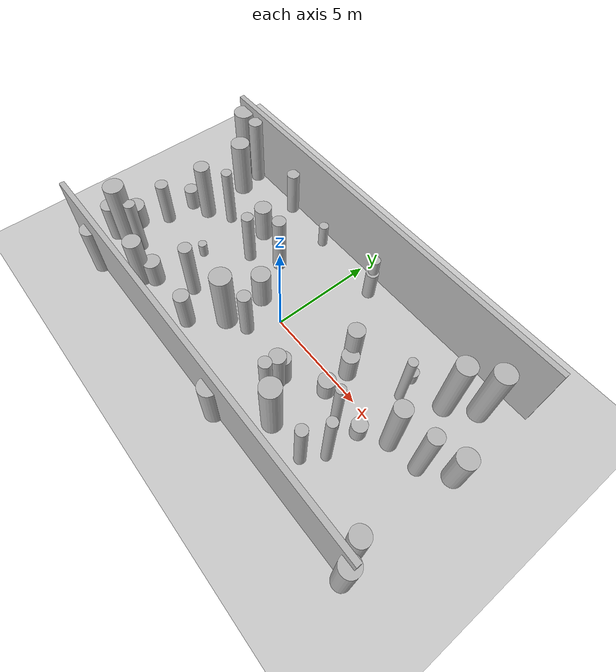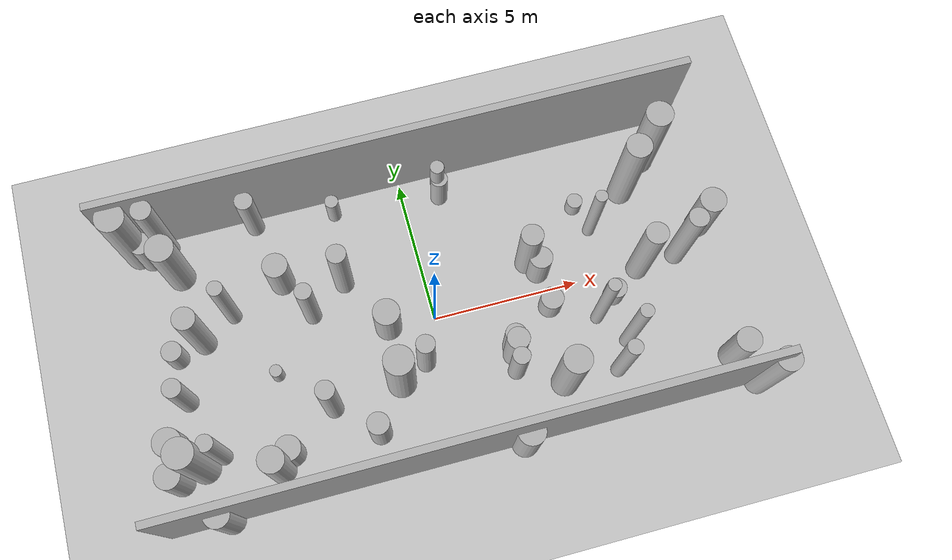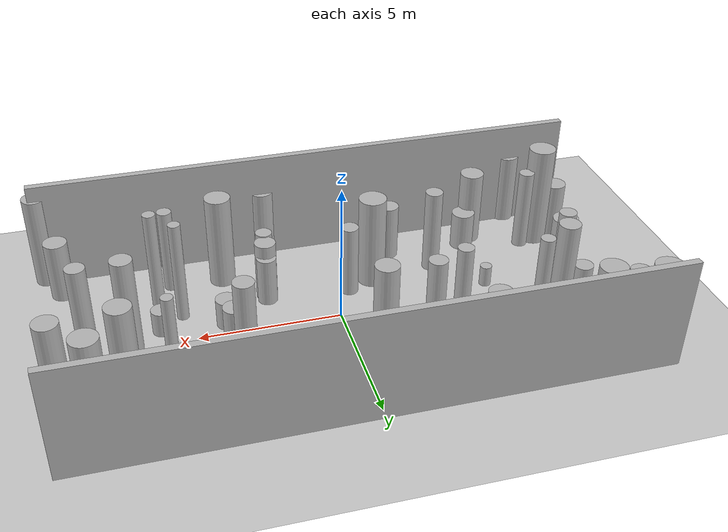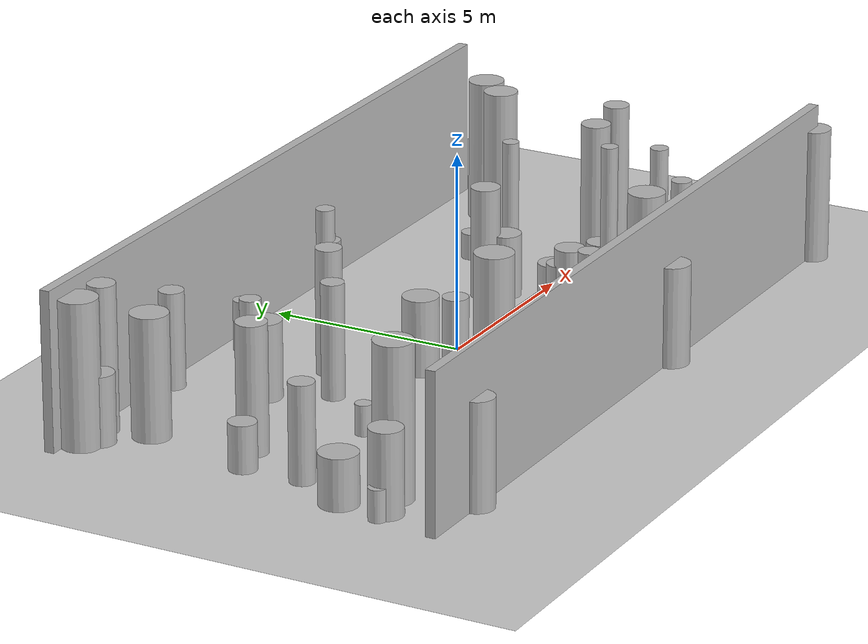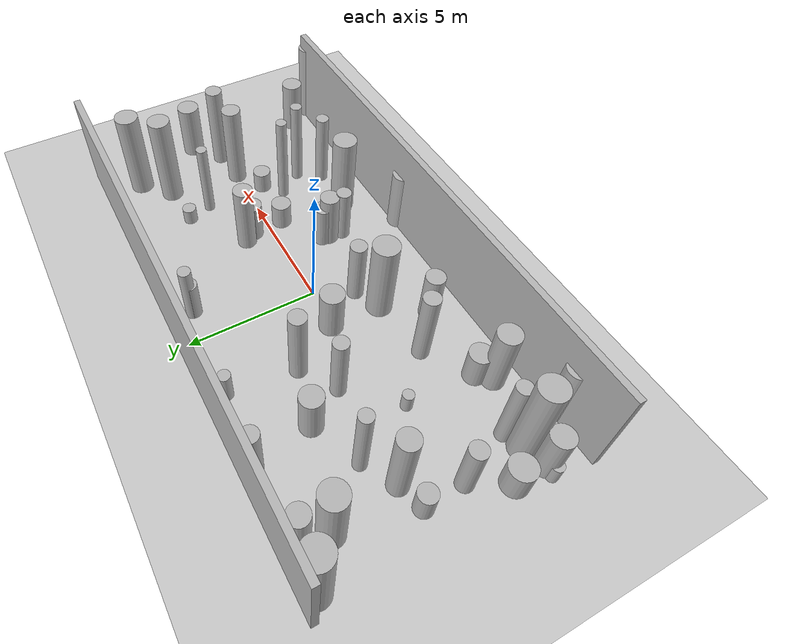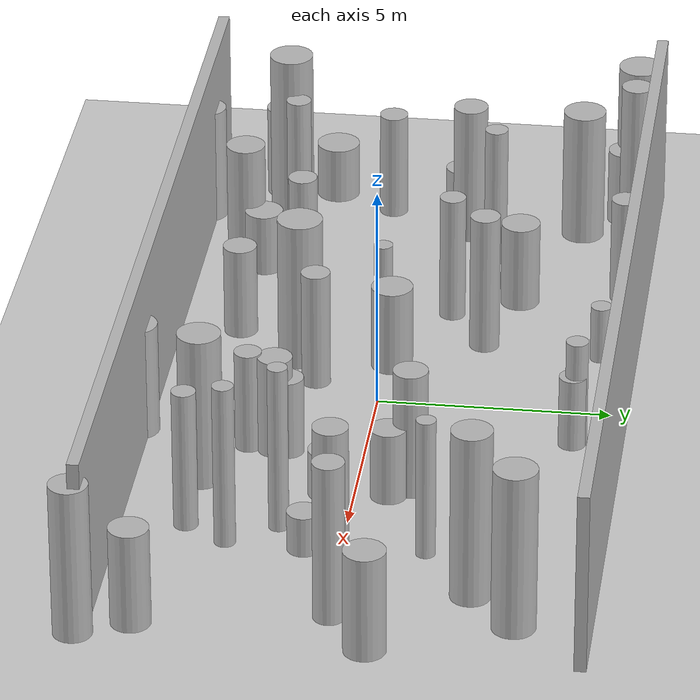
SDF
<?xml version="1.0"?>
<sdf version="1.4">
  <world name="default">
    <gui>
      <camera name="user_camera">
        <pose>-20 -30 40 0 0.66 0.83</pose>
      </camera>
    </gui>
    <include>
      <uri>model://ground_plane</uri>
    </include>
    <include>
      <uri>model://sun</uri>
    </include>
    <scene>
      <shadows>0</shadows>
    </scene>
    <model name="forest">
      <static>true</static>
      <link name="cylinder0">
        <pose>-2.68959795655356 2.0113766975607152 1.5970728615888017 0 0 0 </pose>
        <visual name="visual">
          <geometry>
            <cylinder>
              <radius>0.3268561700407557</radius>
              <length>3.1941457231776034</length>
            </cylinder>
          </geometry>
        </visual>
        <collision name="collision">
          <geometry>
            <cylinder>
              <radius>0.3268561700407557</radius>
              <length>3.1941457231776034</length>
            </cylinder>
          </geometry>
          <max_contacts>0</max_contacts>
        </collision>
      </link>
      <link name="cylinder1">
        <pose>-7.7177040880866326 1.1568127986775778 1.6166086673112208 0 0 0 </pose>
        <visual name="visual">
          <geometry>
            <cylinder>
              <radius>0.38131617678312113</radius>
              <length>3.2332173346224415</length>
            </cylinder>
          </geometry>
        </visual>
        <collision name="collision">
          <geometry>
            <cylinder>
              <radius>0.38131617678312113</radius>
              <length>3.2332173346224415</length>
            </cylinder>
          </geometry>
          <max_contacts>0</max_contacts>
        </collision>
      </link>
      <link name="cylinder2">
        <pose>3.617588601700616 -3.253004639099555 1.736810952850475 0 0 0 </pose>
        <visual name="visual">
          <geometry>
            <cylinder>
              <radius>0.4630361374889053</radius>
              <length>3.47362190570095</length>
            </cylinder>
          </geometry>
        </visual>
        <collision name="collision">
          <geometry>
            <cylinder>
              <radius>0.4630361374889053</radius>
              <length>3.47362190570095</length>
            </cylinder>
          </geometry>
          <max_contacts>0</max_contacts>
        </collision>
      </link>
      <link name="cylinder3">
        <pose>5.718963373977404 2.6825880205367554 0.3367580460458144 0 0 0 </pose>
        <visual name="visual">
          <geometry>
            <cylinder>
              <radius>0.27121167264029034</radius>
              <length>0.6735160920916288</length>
            </cylinder>
          </geometry>
        </visual>
        <collision name="collision">
          <geometry>
            <cylinder>
              <radius>0.27121167264029034</radius>
              <length>0.6735160920916288</length>
            </cylinder>
          </geometry>
          <max_contacts>0</max_contacts>
        </collision>
      </link>
      <link name="cylinder4">
        <pose>9.815624102718761 -4.890035467677819 1.7236457553934157 0 0 0 </pose>
        <visual name="visual">
          <geometry>
            <cylinder>
              <radius>0.4053698532938105</radius>
              <length>3.4472915107868314</length>
            </cylinder>
          </geometry>
        </visual>
        <collision name="collision">
          <geometry>
            <cylinder>
              <radius>0.4053698532938105</radius>
              <length>3.4472915107868314</length>
            </cylinder>
          </geometry>
          <max_contacts>0</max_contacts>
        </collision>
      </link>
      <link name="cylinder5">
        <pose>-7.863865276218684 -2.748146992534486 1.5362536949619663 0 0 0 </pose>
        <visual name="visual">
          <geometry>
            <cylinder>
              <radius>0.2767601987387904</radius>
              <length>3.0725073899239326</length>
            </cylinder>
          </geometry>
        </visual>
        <collision name="collision">
          <geometry>
            <cylinder>
              <radius>0.2767601987387904</radius>
              <length>3.0725073899239326</length>
            </cylinder>
          </geometry>
          <max_contacts>0</max_contacts>
        </collision>
      </link>
      <link name="cylinder6">
        <pose>-5.657075521739494 -3.243355596329568 0.7093183226848625 0 0 0 </pose>
        <visual name="visual">
          <geometry>
            <cylinder>
              <radius>0.42285995792788245</radius>
              <length>1.418636645369725</length>
            </cylinder>
          </geometry>
        </visual>
        <collision name="collision">
          <geometry>
            <cylinder>
              <radius>0.42285995792788245</radius>
              <length>1.418636645369725</length>
            </cylinder>
          </geometry>
          <max_contacts>0</max_contacts>
        </collision>
      </link>
      <link name="cylinder7">
        <pose>-5.21399241738131 4.844750738214236 1.2281490619817281 0 0 0 </pose>
        <visual name="visual">
          <geometry>
            <cylinder>
              <radius>0.3106490543376509</radius>
              <length>2.4562981239634563</length>
            </cylinder>
          </geometry>
        </visual>
        <collision name="collision">
          <geometry>
            <cylinder>
              <radius>0.3106490543376509</radius>
              <length>2.4562981239634563</length>
            </cylinder>
          </geometry>
          <max_contacts>0</max_contacts>
        </collision>
      </link>
      <link name="cylinder8">
        <pose>-8.634050302604987 -0.6883907103051232 1.2284522432205338 0 0 0 </pose>
        <visual name="visual">
          <geometry>
            <cylinder>
              <radius>0.3169625457588813</radius>
              <length>2.4569044864410676</length>
            </cylinder>
          </geometry>
        </visual>
        <collision name="collision">
          <geometry>
            <cylinder>
              <radius>0.3169625457588813</radius>
              <length>2.4569044864410676</length>
            </cylinder>
          </geometry>
          <max_contacts>0</max_contacts>
        </collision>
      </link>
      <link name="cylinder9">
        <pose>1.770332778750305 -4.877572209141105 1.2809551689241236 0 0 0 </pose>
        <visual name="visual">
          <geometry>
            <cylinder>
              <radius>0.45228907555307607</radius>
              <length>2.5619103378482473</length>
            </cylinder>
          </geometry>
        </visual>
        <collision name="collision">
          <geometry>
            <cylinder>
              <radius>0.45228907555307607</radius>
              <length>2.5619103378482473</length>
            </cylinder>
          </geometry>
          <max_contacts>0</max_contacts>
        </collision>
      </link>
      <link name="cylinder10">
        <pose>2.1766987875480392 -2.459263656787355 1.142604255167373 0 0 0 </pose>
        <visual name="visual">
          <geometry>
            <cylinder>
              <radius>0.2919335957878768</radius>
              <length>2.285208510334746</length>
            </cylinder>
          </geometry>
        </visual>
        <collision name="collision">
          <geometry>
            <cylinder>
              <radius>0.2919335957878768</radius>
              <length>2.285208510334746</length>
            </cylinder>
          </geometry>
          <max_contacts>0</max_contacts>
        </collision>
      </link>
      <link name="cylinder11">
        <pose>5.333147638711257 -1.3792701882663048 1.8893428155447134 0 0 0 </pose>
        <visual name="visual">
          <geometry>
            <cylinder>
              <radius>0.21182262101200294</radius>
              <length>3.778685631089427</length>
            </cylinder>
          </geometry>
        </visual>
        <collision name="collision">
          <geometry>
            <cylinder>
              <radius>0.21182262101200294</radius>
              <length>3.778685631089427</length>
            </cylinder>
          </geometry>
          <max_contacts>0</max_contacts>
        </collision>
      </link>
      <link name="cylinder12">
        <pose>6.108728792297001 -0.7563850275244786 0.44871787521917716 0 0 0 </pose>
        <visual name="visual">
          <geometry>
            <cylinder>
              <radius>0.35262468243606215</radius>
              <length>0.8974357504383543</length>
            </cylinder>
          </geometry>
        </visual>
        <collision name="collision">
          <geometry>
            <cylinder>
              <radius>0.35262468243606215</radius>
              <length>0.8974357504383543</length>
            </cylinder>
          </geometry>
          <max_contacts>0</max_contacts>
        </collision>
      </link>
      <link name="cylinder13">
        <pose>7.493072979034487 2.8140006088976506 1.9341376796541248 0 0 0 </pose>
        <visual name="visual">
          <geometry>
            <cylinder>
              <radius>0.43094015236682404</radius>
              <length>3.8682753593082495</length>
            </cylinder>
          </geometry>
        </visual>
        <collision name="collision">
          <geometry>
            <cylinder>
              <radius>0.43094015236682404</radius>
              <length>3.8682753593082495</length>
            </cylinder>
          </geometry>
          <max_contacts>0</max_contacts>
        </collision>
      </link>
      <link name="cylinder14">
        <pose>-2.714406390129909 -3.341061033331769 1.0515054382013362 0 0 0 </pose>
        <visual name="visual">
          <geometry>
            <cylinder>
              <radius>0.3671993688012387</radius>
              <length>2.1030108764026725</length>
            </cylinder>
          </geometry>
        </visual>
        <collision name="collision">
          <geometry>
            <cylinder>
              <radius>0.3671993688012387</radius>
              <length>2.1030108764026725</length>
            </cylinder>
          </geometry>
          <max_contacts>0</max_contacts>
        </collision>
      </link>
      <link name="cylinder15">
        <pose>-3.982893178495493 1.1683861433504914 1.4580378426515856 0 0 0 </pose>
        <visual name="visual">
          <geometry>
            <cylinder>
              <radius>0.28588258986640086</radius>
              <length>2.9160756853031713</length>
            </cylinder>
          </geometry>
        </visual>
        <collision name="collision">
          <geometry>
            <cylinder>
              <radius>0.28588258986640086</radius>
              <length>2.9160756853031713</length>
            </cylinder>
          </geometry>
          <max_contacts>0</max_contacts>
        </collision>
      </link>
      <link name="cylinder16">
        <pose>-9.337235207492933 -3.264105971708614 1.0614563929848035 0 0 0 </pose>
        <visual name="visual">
          <geometry>
            <cylinder>
              <radius>0.41582430287459626</radius>
              <length>2.122912785969607</length>
            </cylinder>
          </geometry>
        </visual>
        <collision name="collision">
          <geometry>
            <cylinder>
              <radius>0.41582430287459626</radius>
              <length>2.122912785969607</length>
            </cylinder>
          </geometry>
          <max_contacts>0</max_contacts>
        </collision>
      </link>
      <link name="cylinder17">
        <pose>-0.6794427139290793 -1.411072954400173 1.3387831289910328 0 0 0 </pose>
        <visual name="visual">
          <geometry>
            <cylinder>
              <radius>0.31414917555333616</radius>
              <length>2.6775662579820656</length>
            </cylinder>
          </geometry>
        </visual>
        <collision name="collision">
          <geometry>
            <cylinder>
              <radius>0.31414917555333616</radius>
              <length>2.6775662579820656</length>
            </cylinder>
          </geometry>
          <max_contacts>0</max_contacts>
        </collision>
      </link>
      <link name="cylinder18">
        <pose>-9.348384287857677 -2.0493049174673783 0.6416988961360066 0 0 0 </pose>
        <visual name="visual">
          <geometry>
            <cylinder>
              <radius>0.48049760477178566</radius>
              <length>1.2833977922720132</length>
            </cylinder>
          </geometry>
        </visual>
        <collision name="collision">
          <geometry>
            <cylinder>
              <radius>0.48049760477178566</radius>
              <length>1.2833977922720132</length>
            </cylinder>
          </geometry>
          <max_contacts>0</max_contacts>
        </collision>
      </link>
      <link name="cylinder19">
        <pose>-1.6387413209665809 -1.8732808482460173 1.7125898501449954 0 0 0 </pose>
        <visual name="visual">
          <geometry>
            <cylinder>
              <radius>0.49225217591459947</radius>
              <length>3.425179700289991</length>
            </cylinder>
          </geometry>
        </visual>
        <collision name="collision">
          <geometry>
            <cylinder>
              <radius>0.49225217591459947</radius>
              <length>3.425179700289991</length>
            </cylinder>
          </geometry>
          <max_contacts>0</max_contacts>
        </collision>
      </link>
      <link name="cylinder20">
        <pose>-8.05474209265747 3.6804097343854387 1.5483206727531764 0 0 0 </pose>
        <visual name="visual">
          <geometry>
            <cylinder>
              <radius>0.47146532775352895</radius>
              <length>3.096641345506353</length>
            </cylinder>
          </geometry>
        </visual>
        <collision name="collision">
          <geometry>
            <cylinder>
              <radius>0.47146532775352895</radius>
              <length>3.096641345506353</length>
            </cylinder>
          </geometry>
          <max_contacts>0</max_contacts>
        </collision>
      </link>
      <link name="cylinder21">
        <pose>1.236548607159909 4.365165548705592 1.2349088145034965 0 0 0 </pose>
        <visual name="visual">
          <geometry>
            <cylinder>
              <radius>0.2376058132506176</radius>
              <length>2.469817629006993</length>
            </cylinder>
          </geometry>
        </visual>
        <collision name="collision">
          <geometry>
            <cylinder>
              <radius>0.2376058132506176</radius>
              <length>2.469817629006993</length>
            </cylinder>
          </geometry>
          <max_contacts>0</max_contacts>
        </collision>
      </link>
      <link name="cylinder22">
        <pose>-8.675407971900192 0.8525052894851974 0.5929914275850551 0 0 0 </pose>
        <visual name="visual">
          <geometry>
            <cylinder>
              <radius>0.3451992468614844</radius>
              <length>1.1859828551701102</length>
            </cylinder>
          </geometry>
        </visual>
        <collision name="collision">
          <geometry>
            <cylinder>
              <radius>0.3451992468614844</radius>
              <length>1.1859828551701102</length>
            </cylinder>
          </geometry>
          <max_contacts>0</max_contacts>
        </collision>
      </link>
      <link name="cylinder23">
        <pose>9.744270062508782 0.9513689943691404 1.1643301933715384 0 0 0 </pose>
        <visual name="visual">
          <geometry>
            <cylinder>
              <radius>0.4406735939137904</radius>
              <length>2.328660386743077</length>
            </cylinder>
          </geometry>
        </visual>
        <collision name="collision">
          <geometry>
            <cylinder>
              <radius>0.4406735939137904</radius>
              <length>2.328660386743077</length>
            </cylinder>
          </geometry>
          <max_contacts>0</max_contacts>
        </collision>
      </link>
      <link name="cylinder24">
        <pose>7.195961371137415 -0.05435962709384157 1.784563654053069 0 0 0 </pose>
        <visual name="visual">
          <geometry>
            <cylinder>
              <radius>0.37300627731212255</radius>
              <length>3.569127308106138</length>
            </cylinder>
          </geometry>
        </visual>
        <collision name="collision">
          <geometry>
            <cylinder>
              <radius>0.37300627731212255</radius>
              <length>3.569127308106138</length>
            </cylinder>
          </geometry>
          <max_contacts>0</max_contacts>
        </collision>
      </link>
      <link name="cylinder25">
        <pose>8.5480253991668 3.7909175891656446 1.840653032762964 0 0 0 </pose>
        <visual name="visual">
          <geometry>
            <cylinder>
              <radius>0.4583118275450914</radius>
              <length>3.681306065525928</length>
            </cylinder>
          </geometry>
        </visual>
        <collision name="collision">
          <geometry>
            <cylinder>
              <radius>0.4583118275450914</radius>
              <length>3.681306065525928</length>
            </cylinder>
          </geometry>
          <max_contacts>0</max_contacts>
        </collision>
      </link>
      <link name="cylinder26">
        <pose>-9.685968386708952 -3.236931767495955 0.3982048849070302 0 0 0 </pose>
        <visual name="visual">
          <geometry>
            <cylinder>
              <radius>0.22439878837134608</radius>
              <length>0.7964097698140604</length>
            </cylinder>
          </geometry>
        </visual>
        <collision name="collision">
          <geometry>
            <cylinder>
              <radius>0.22439878837134608</radius>
              <length>0.7964097698140604</length>
            </cylinder>
          </geometry>
          <max_contacts>0</max_contacts>
        </collision>
      </link>
      <link name="cylinder27">
        <pose>-8.51267211693862 -2.9975007735478796 1.9337483163687614 0 0 0 </pose>
        <visual name="visual">
          <geometry>
            <cylinder>
              <radius>0.4849308671304101</radius>
              <length>3.867496632737523</length>
            </cylinder>
          </geometry>
        </visual>
        <collision name="collision">
          <geometry>
            <cylinder>
              <radius>0.4849308671304101</radius>
              <length>3.867496632737523</length>
            </cylinder>
          </geometry>
          <max_contacts>0</max_contacts>
        </collision>
      </link>
      <link name="cylinder28">
        <pose>-4.016344247105044 -2.1326747080786976 1.5880352848033894 0 0 0 </pose>
        <visual name="visual">
          <geometry>
            <cylinder>
              <radius>0.314570543026229</radius>
              <length>3.176070569606779</length>
            </cylinder>
          </geometry>
        </visual>
        <collision name="collision">
          <geometry>
            <cylinder>
              <radius>0.314570543026229</radius>
              <length>3.176070569606779</length>
            </cylinder>
          </geometry>
          <max_contacts>0</max_contacts>
        </collision>
      </link>
      <link name="cylinder29">
        <pose>-4.7331712065798754 2.586684120364052 0.9825400851100223 0 0 0 </pose>
        <visual name="visual">
          <geometry>
            <cylinder>
              <radius>0.42646125197178575</radius>
              <length>1.9650801702200447</length>
            </cylinder>
          </geometry>
        </visual>
        <collision name="collision">
          <geometry>
            <cylinder>
              <radius>0.42646125197178575</radius>
              <length>1.9650801702200447</length>
            </cylinder>
          </geometry>
          <max_contacts>0</max_contacts>
        </collision>
      </link>
      <link name="cylinder30">
        <pose>1.2783770420289535 4.290467469790258 0.8226698024979953 0 0 0 </pose>
        <visual name="visual">
          <geometry>
            <cylinder>
              <radius>0.2947414273921268</radius>
              <length>1.6453396049959905</length>
            </cylinder>
          </geometry>
        </visual>
        <collision name="collision">
          <geometry>
            <cylinder>
              <radius>0.2947414273921268</radius>
              <length>1.6453396049959905</length>
            </cylinder>
          </geometry>
          <max_contacts>0</max_contacts>
        </collision>
      </link>
      <link name="cylinder31">
        <pose>9.29627126241893 -3.805507733774097 1.1098780840088953 0 0 0 </pose>
        <visual name="visual">
          <geometry>
            <cylinder>
              <radius>0.4179327461180502</radius>
              <length>2.2197561680177906</length>
            </cylinder>
          </geometry>
        </visual>
        <collision name="collision">
          <geometry>
            <cylinder>
              <radius>0.4179327461180502</radius>
              <length>2.2197561680177906</length>
            </cylinder>
          </geometry>
          <max_contacts>0</max_contacts>
        </collision>
      </link>
      <link name="cylinder32">
        <pose>3.535761645799189 1.1276389567939047 1.4307036545309644 0 0 0 </pose>
        <visual name="visual">
          <geometry>
            <cylinder>
              <radius>0.37225212043839606</radius>
              <length>2.8614073090619287</length>
            </cylinder>
          </geometry>
        </visual>
        <collision name="collision">
          <geometry>
            <cylinder>
              <radius>0.37225212043839606</radius>
              <length>2.8614073090619287</length>
            </cylinder>
          </geometry>
          <max_contacts>0</max_contacts>
        </collision>
      </link>
      <link name="cylinder33">
        <pose>3.8292112463511394 0.7067266837824988 0.8133793554716309 0 0 0 </pose>
        <visual name="visual">
          <geometry>
            <cylinder>
              <radius>0.38791482730648164</radius>
              <length>1.6267587109432617</length>
            </cylinder>
          </geometry>
        </visual>
        <collision name="collision">
          <geometry>
            <cylinder>
              <radius>0.38791482730648164</radius>
              <length>1.6267587109432617</length>
            </cylinder>
          </geometry>
          <max_contacts>0</max_contacts>
        </collision>
      </link>
      <link name="cylinder34">
        <pose>2.272694660048833 -1.6131932805908011 0.8924180485663684 0 0 0 </pose>
        <visual name="visual">
          <geometry>
            <cylinder>
              <radius>0.34778734577970943</radius>
              <length>1.7848360971327368</length>
            </cylinder>
          </geometry>
        </visual>
        <collision name="collision">
          <geometry>
            <cylinder>
              <radius>0.34778734577970943</radius>
              <length>1.7848360971327368</length>
            </cylinder>
          </geometry>
          <max_contacts>0</max_contacts>
        </collision>
      </link>
      <link name="cylinder35">
        <pose>3.8920027794170764 -0.5827148616636633 0.5299992726836235 0 0 0 </pose>
        <visual name="visual">
          <geometry>
            <cylinder>
              <radius>0.3889034144021775</radius>
              <length>1.059998545367247</length>
            </cylinder>
          </geometry>
        </visual>
        <collision name="collision">
          <geometry>
            <cylinder>
              <radius>0.3889034144021775</radius>
              <length>1.059998545367247</length>
            </cylinder>
          </geometry>
          <max_contacts>0</max_contacts>
        </collision>
      </link>
      <link name="cylinder36">
        <pose>6.054379329713193 -2.390691149181474 1.8423310121429386 0 0 0 </pose>
        <visual name="visual">
          <geometry>
            <cylinder>
              <radius>0.22612435583270302</radius>
              <length>3.684662024285877</length>
            </cylinder>
          </geometry>
        </visual>
        <collision name="collision">
          <geometry>
            <cylinder>
              <radius>0.22612435583270302</radius>
              <length>3.684662024285877</length>
            </cylinder>
          </geometry>
          <max_contacts>0</max_contacts>
        </collision>
      </link>
      <link name="cylinder37">
        <pose>-5.564053762270471 -0.5503775349759188 0.3849319561679804 0 0 0 </pose>
        <visual name="visual">
          <geometry>
            <cylinder>
              <radius>0.21058833223008255</radius>
              <length>0.7698639123359609</length>
            </cylinder>
          </geometry>
        </visual>
        <collision name="collision">
          <geometry>
            <cylinder>
              <radius>0.21058833223008255</radius>
              <length>0.7698639123359609</length>
            </cylinder>
          </geometry>
          <max_contacts>0</max_contacts>
        </collision>
      </link>
      <link name="cylinder38">
        <pose>-8.269769101758502 4.82506557024816 1.8409943512866458 0 0 0 </pose>
        <visual name="visual">
          <geometry>
            <cylinder>
              <radius>0.34500611303914286</radius>
              <length>3.6819887025732916</length>
            </cylinder>
          </geometry>
        </visual>
        <collision name="collision">
          <geometry>
            <cylinder>
              <radius>0.34500611303914286</radius>
              <length>3.6819887025732916</length>
            </cylinder>
          </geometry>
          <max_contacts>0</max_contacts>
        </collision>
      </link>
      <link name="cylinder39">
        <pose>-8.896656990335828 4.559902318819519 0.87523018382552 0 0 0 </pose>
        <visual name="visual">
          <geometry>
            <cylinder>
              <radius>0.38877575423514177</radius>
              <length>1.75046036765104</length>
            </cylinder>
          </geometry>
        </visual>
        <collision name="collision">
          <geometry>
            <cylinder>
              <radius>0.38877575423514177</radius>
              <length>1.75046036765104</length>
            </cylinder>
          </geometry>
          <max_contacts>0</max_contacts>
        </collision>
      </link>
      <link name="cylinder40">
        <pose>-6.589952167246695 1.8485507733445043 1.63762082994583 0 0 0 </pose>
        <visual name="visual">
          <geometry>
            <cylinder>
              <radius>0.2554527027548575</radius>
              <length>3.27524165989166</length>
            </cylinder>
          </geometry>
        </visual>
        <collision name="collision">
          <geometry>
            <cylinder>
              <radius>0.2554527027548575</radius>
              <length>3.27524165989166</length>
            </cylinder>
          </geometry>
          <max_contacts>0</max_contacts>
        </collision>
      </link>
      <link name="cylinder41">
        <pose>-8.001344119941162 -4.848723682230595 1.35023158225118 0 0 0 </pose>
        <visual name="visual">
          <geometry>
            <cylinder>
              <radius>0.42095656673568316</radius>
              <length>2.70046316450236</length>
            </cylinder>
          </geometry>
        </visual>
        <collision name="collision">
          <geometry>
            <cylinder>
              <radius>0.42095656673568316</radius>
              <length>2.70046316450236</length>
            </cylinder>
          </geometry>
          <max_contacts>0</max_contacts>
        </collision>
      </link>
      <link name="cylinder42">
        <pose>-2.434956158502395 4.573638510220164 0.6483683131948652 0 0 0 </pose>
        <visual name="visual">
          <geometry>
            <cylinder>
              <radius>0.23005371458515037</radius>
              <length>1.2967366263897304</length>
            </cylinder>
          </geometry>
        </visual>
        <collision name="collision">
          <geometry>
            <cylinder>
              <radius>0.23005371458515037</radius>
              <length>1.2967366263897304</length>
            </cylinder>
          </geometry>
          <max_contacts>0</max_contacts>
        </collision>
      </link>
      <link name="cylinder43">
        <pose>-1.5973229661469528 0.12372029083185243 0.9697369628164613 0 0 0 </pose>
        <visual name="visual">
          <geometry>
            <cylinder>
              <radius>0.45250022475369855</radius>
              <length>1.9394739256329225</length>
            </cylinder>
          </geometry>
        </visual>
        <collision name="collision">
          <geometry>
            <cylinder>
              <radius>0.45250022475369855</radius>
              <length>1.9394739256329225</length>
            </cylinder>
          </geometry>
          <max_contacts>0</max_contacts>
        </collision>
      </link>
      <link name="cylinder44">
        <pose>2.2458480294456162 -1.8815130428948423 1.1209103250678694 0 0 0 </pose>
        <visual name="visual">
          <geometry>
            <cylinder>
              <radius>0.3754417640551072</radius>
              <length>2.2418206501357387</length>
            </cylinder>
          </geometry>
        </visual>
        <collision name="collision">
          <geometry>
            <cylinder>
              <radius>0.3754417640551072</radius>
              <length>2.2418206501357387</length>
            </cylinder>
          </geometry>
          <max_contacts>0</max_contacts>
        </collision>
      </link>
      <link name="cylinder45">
        <pose>6.0035403539089 1.7307747004336047 1.578539694743438 0 0 0 </pose>
        <visual name="visual">
          <geometry>
            <cylinder>
              <radius>0.20728045494632316</radius>
              <length>3.157079389486876</length>
            </cylinder>
          </geometry>
        </visual>
        <collision name="collision">
          <geometry>
            <cylinder>
              <radius>0.20728045494632316</radius>
              <length>3.157079389486876</length>
            </cylinder>
          </geometry>
          <max_contacts>0</max_contacts>
        </collision>
      </link>
      <link name="cylinder46">
        <pose>-9.275336363378026 4.8297079737363156 1.8403897969918608 0 0 0 </pose>
        <visual name="visual">
          <geometry>
            <cylinder>
              <radius>0.493520426941207</radius>
              <length>3.6807795939837216</length>
            </cylinder>
          </geometry>
        </visual>
        <collision name="collision">
          <geometry>
            <cylinder>
              <radius>0.493520426941207</radius>
              <length>3.6807795939837216</length>
            </cylinder>
          </geometry>
          <max_contacts>0</max_contacts>
        </collision>
      </link>
      <link name="cylinder47">
        <pose>8.617611750976192 0.09492860433422656 1.8040592624959313 0 0 0 </pose>
        <visual name="visual">
          <geometry>
            <cylinder>
              <radius>0.3318456082764315</radius>
              <length>3.6081185249918626</length>
            </cylinder>
          </geometry>
        </visual>
        <collision name="collision">
          <geometry>
            <cylinder>
              <radius>0.3318456082764315</radius>
              <length>3.6081185249918626</length>
            </cylinder>
          </geometry>
          <max_contacts>0</max_contacts>
        </collision>
      </link>
      <link name="cylinder48">
        <pose>-6.0835594878362915 -3.6950120826737267 1.4033643842705092 0 0 0 </pose>
        <visual name="visual">
          <geometry>
            <cylinder>
              <radius>0.42981091182336023</radius>
              <length>2.8067287685410185</length>
            </cylinder>
          </geometry>
        </visual>
        <collision name="collision">
          <geometry>
            <cylinder>
              <radius>0.42981091182336023</radius>
              <length>2.8067287685410185</length>
            </cylinder>
          </geometry>
          <max_contacts>0</max_contacts>
        </collision>
      </link>
      <link name="cylinder49">
        <pose>5.486724511178124 -3.2847941912531518 1.5865538096587606 0 0 0 </pose>
        <visual name="visual">
          <geometry>
            <cylinder>
              <radius>0.25645302516551055</radius>
              <length>3.173107619317521</length>
            </cylinder>
          </geometry>
        </visual>
        <collision name="collision">
          <geometry>
            <cylinder>
              <radius>0.25645302516551055</radius>
              <length>3.173107619317521</length>
            </cylinder>
          </geometry>
          <max_contacts>0</max_contacts>
        </collision>
      </link>
      <link name="cube0">
        <pose>0 5.25 2.0 0 0 0 </pose>
        <visual name="visual">
          <geometry>
            <box>
              <size>20 0.25 4.0</size>
            </box>
          </geometry>
        </visual>
        <collision name="collision">
          <geometry>
            <box>
              <size>20 0.25 4.0</size>
            </box>
          </geometry>
          <max_contacts>0</max_contacts>
        </collision>
      </link>
      <link name="cube1">
        <pose>0 -4.75 2.0 0 0 0 </pose>
        <visual name="visual">
          <geometry>
            <box>
              <size>20 0.25 4.0</size>
            </box>
          </geometry>
        </visual>
        <collision name="collision">
          <geometry>
            <box>
              <size>20 0.25 4.0</size>
            </box>
          </geometry>
          <max_contacts>0</max_contacts>
        </collision>
      </link>
    </model>
    <!-- Plugins -->
    <plugin name="gazebo_octomap" filename="librotors_gazebo_octomap_plugin.so"/>
    <plugin name="ros_interface_plugin" filename="librotors_gazebo_ros_interface_plugin.so"/>
    <!-- Physics -->
    <physics name="default_physics" default="0" type="ode">
      <max_step_size>0.004</max_step_size>
      <real_time_factor>1</real_time_factor>
      <real_time_update_rate>250</real_time_update_rate>
      <gravity>0 0 -9.8</gravity>
      <magnetic_field>6e-06 2.3e-05 -4.2e-05</magnetic_field>
      <ode>
        <solver>
          <type>quick</type>
          <iters>1000</iters>
          <sor>1.3</sor>
          <use_dynamic_moi_rescaling>0</use_dynamic_moi_rescaling>
        </solver>
        <constraints>
          <cfm>0</cfm>
          <erp>0.2</erp>
          <contact_max_correcting_vel>100</contact_max_correcting_vel>
          <contact_surface_layer>0.001</contact_surface_layer>
        </constraints>
      </ode>
    </physics>
  </world>
</sdf>
